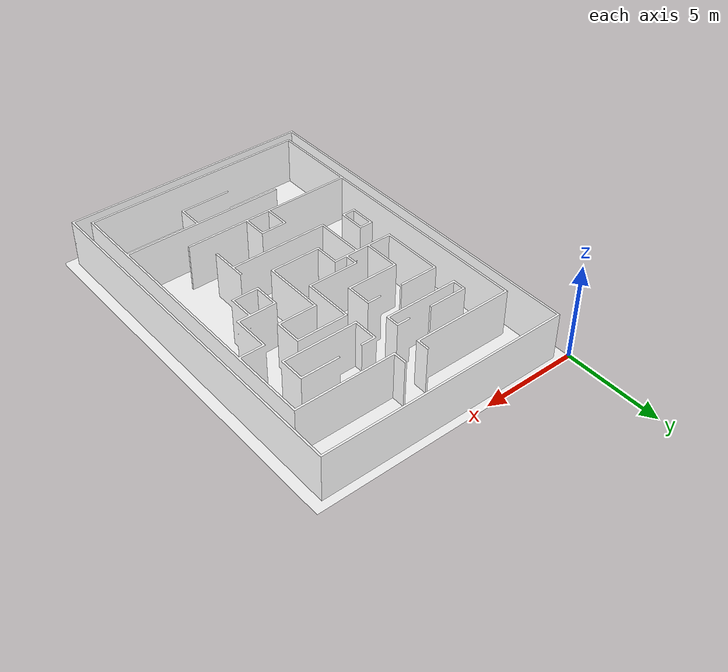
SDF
<?xml version='1.0' encoding='utf-8'?>
<sdf version="1.7">
  <model name="multi_floor_college_ground">
    <static>true</static>
    <link name="floor_1">
      <visual name="visual">
        <geometry>
          <mesh>
            <uri>model://multi_floor_college_ground/meshes/floor_1.obj</uri>
          </mesh>
        </geometry>
        <material>
          <diffuse>1.0 1.0 1.0</diffuse>
          <specular>0.1 0.1 0.1</specular>
          <pbr>
            <metal>
              <metalness>0.0</metalness>
              <albedo_map>model://multi_floor_college_ground/meshes/beige_tiles.png</albedo_map>
            </metal>
          </pbr>
          <script>
            <uri>model://multi_floor_college_ground/meshes/</uri>
            <name>floor_1_Diffuse</name>
          </script>
        </material>
      </visual>
      <collision name="collision">
        <geometry>
          <mesh>
            <uri>model://multi_floor_college_ground/meshes/floor_1.obj</uri>
          </mesh>
        </geometry>
        <surface>
          <contact>
            <collide_bitmask>0x01</collide_bitmask>
          </contact>
        </surface>
      </collision>
    </link>
    <link name="wall_1">
      <visual name="wall_1">
        <geometry>
          <mesh>
            <uri>model://multi_floor_college_ground/meshes/wall_1.obj</uri>
          </mesh>
        </geometry>
        <transparency>0.0</transparency>
        <material>
          <diffuse>1.0 1.0 1.0</diffuse>
          <specular>0.1 0.1 0.1</specular>
          <pbr>
            <metal>
              <metalness>0.0</metalness>
              <albedo_map>model://multi_floor_college_ground/meshes/default.png</albedo_map>
            </metal>
          </pbr>
          <script>
            <uri>model://multi_floor_college_ground/meshes/</uri>
            <name>wall_1_Diffuse</name>
          </script>
        </material>
      </visual>
      <collision name="collision">
        <geometry>
          <mesh>
            <uri>model://multi_floor_college_ground/meshes/wall_1.obj</uri>
          </mesh>
        </geometry>
        <surface>
          <contact>
            <collide_bitmask>0x01</collide_bitmask>
          </contact>
        </surface>
      </collision>
      <pose>0.6084146404016622 -19.405750931959545 0 0 0 0</pose>
    </link>
  </model>
</sdf>
